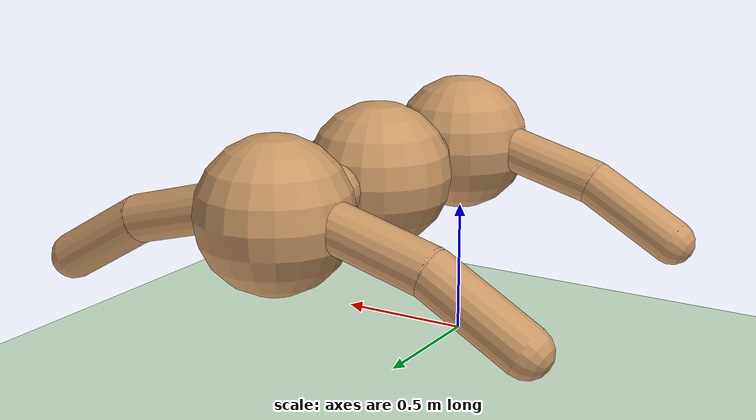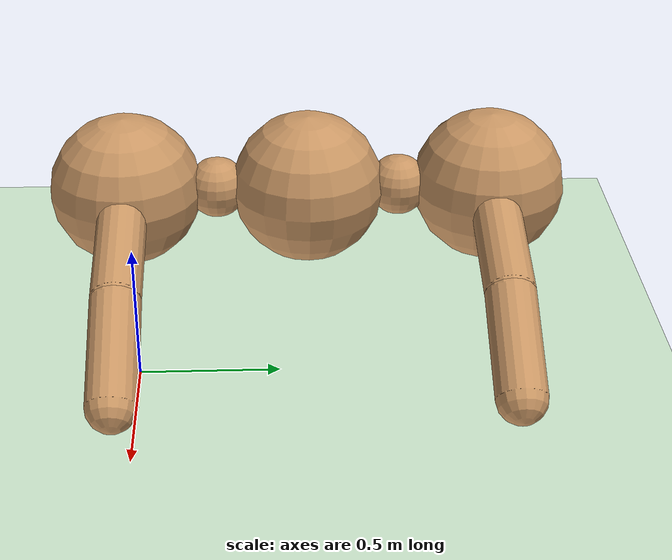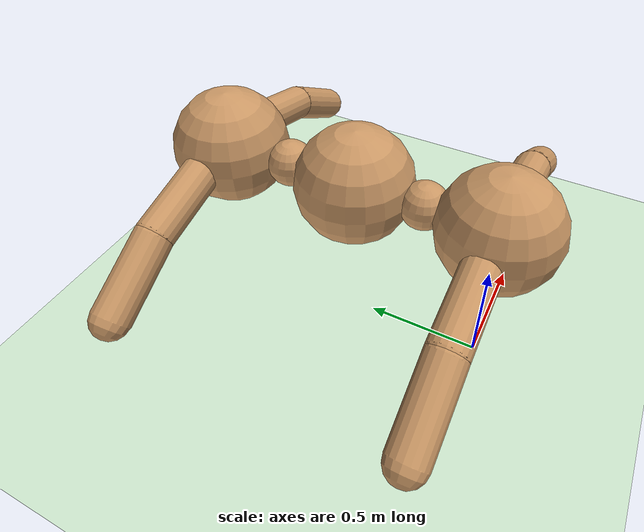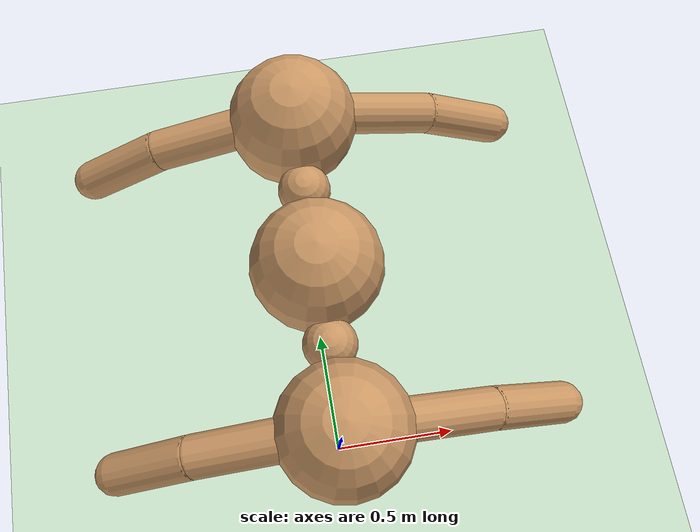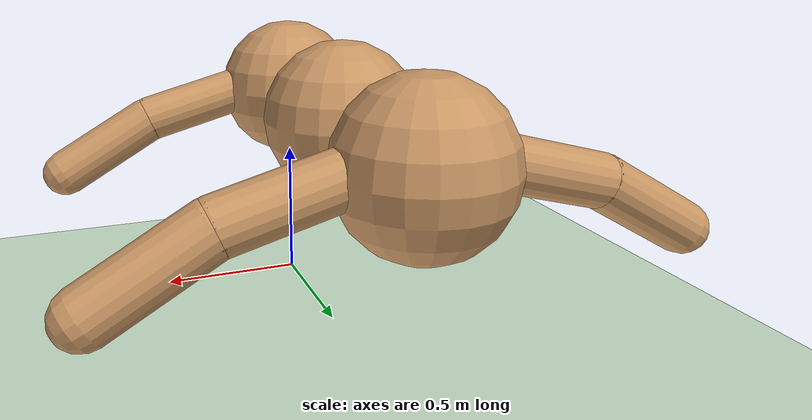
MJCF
<mujoco model="gecko">
  <compiler angle="degree" coordinate="local" inertiafromgeom="true"/>
  <option integrator="RK4" timestep="0.01"/>

  <custom>
    <numeric data="0.0 0.0 0.55 1.0 0.0 0.0 0.0 0.0 1.0 0.0 -1.0 0.0 -1.0 0.0 1.0" name="init_qpos"/>
  </custom>

  <default>
    <joint armature="1" damping="1" limited="true"/>
    <geom conaffinity="0" condim="3" density="5.0" friction="1 0.5 0.5" margin="0.01" rgba="0.8 0.6 0.4 1"/>
  </default>

  <asset>
    <texture builtin="gradient" height="100" rgb1="1 1 1" rgb2="0 0 0" type="skybox" width="100"/>
    <texture builtin="flat" height="1278" mark="cross" markrgb="1 1 1" name="texgeom" random="0.01" rgb1="0.8 0.6 0.4" rgb2="0.8 0.6 0.4" type="cube" width="127"/>
    <texture builtin="checker" height="100" name="texplane" rgb1="0 0 0" rgb2="0.8 0.8 0.8" type="2d" width="100"/>
    <material name="MatPlane" reflectance="0.5" shininess="1" specular="1" texrepeat="60 60" texture="texplane"/>
    <material name="geom" texture="texgeom" texuniform="true"/>
  </asset>

  <worldbody>
    <light cutoff="100" diffuse="1 1 1" dir="-0 0 -1.3" directional="true" exponent="1" pos="0 0 1.3" specular=".1 .1 .1"/>
    <geom conaffinity="1" condim="3" material="MatPlane" name="floor" pos="0.0 0.0 0.0" rgba="0.8 0.9 0.8 1" size="40 40 40" type="plane"/>

    <!-- ====== Gecko ====== -->
    <body name="torso" pos="0.0 0.0 0.75">
      <geom name="head_geom" pos="0.0 0.0 0.0" size="0.25" type="sphere"/>
      <joint armature="0.0" damping="0.0" limited="false" margin="0.01" name="root" pos="0.0 0.0 0.0" type="free"/>

      <body name="front_right_leg" pos="0.0 0.0 0.0">
        <geom fromto="0.0 0.0 0.0 -0.2 0.0 0.0" name="front_right_aux_geom" size="0.08" type="capsule"/>

        <body name="front_right_aux" pos="-0.2 0.0 0.0" axisangle="0 1 0 -15">
          <joint name="hip0" pos="0.0 0.0 0.0" axis="0 0 1" range="-30 30" type="hinge"/>
          <geom fromto="0.0 0.0 0.0 -0.35 0.0 0.0" name="front_right_leg_geom" size="0.08" type="capsule"/>

          <body pos="-0.35 0.0 0.0" axisangle="0 1 0 -15">
            <joint name="ankle0" pos="0.0 0.0 0.0" axis="0 0 1" range="-30 30" type="hinge"/>
            <geom fromto="0.0 0.0 0.0 -0.35 0.0 0.0" name="front_right_ankle_geom" size="0.08" type="capsule"/>
          </body>
        </body>
      </body>

      <body name="front_left_leg" pos="0.0 0.0 0.0">
        <geom fromto="0.0 0.0 0.0 0.2 0.0 0.0" name="front_left_aux_geom" size="0.08" type="capsule"/>

        <body name="front_left_aux" pos="0.2 0.0 0.0" axisangle="0 1 0 15">
          <joint name="hip1" pos="0.0 0.0 0.0" axis="0 0 1" range="-30 30" type="hinge"/>
          <geom fromto="0.0 0.0 0.0 0.35 0.0 0.0" name="front_left_leg_geom" size="0.08" type="capsule"/>

          <body pos="0.35 0.0 0.0" axisangle="0 1 0 15">
            <joint name="ankle1" pos="0.0 0.0 0.0" axis="0 0 1" range="-30 30" type="hinge"/>
            <geom fromto="0.0 0.0 0.0 0.35 0.0 0.0" name="front_left_ankle_geom" size="0.08" type="capsule"/>
          </body>
        </body>
      </body>

      <body name="trunk" pos="0.0 0.6 0.0">
        <geom name="trunk_geom" pos="0.0 0.0 0.0" size="0.25" type="sphere"/>
        <geom name="connector0" pos="0.0 -0.3 0.0" size="0.1" type="sphere"/>
        <joint name="joint0" pos="0.0 -0.3 0.0" axis="0 0 1" range="-45 45" type="hinge"/>

        <body name="back" pos="0.0 0.6 0.0">
          <geom name="back_geom" pos="0.0 0.0 0.0" size="0.25" type="sphere"/>
          <geom name="connector1" pos="0.0 -0.3 0.0" size="0.1" type="sphere"/>
          <joint name="joint1" pos="0.0 -0.3 0.0" axis="0 0 1" range="-45 45" type="hinge"/>

          <body name="back_right_leg" pos="0.0 0.0 0.0">
            <geom fromto="0.0 0.0 0.0 -0.2 0.0 0.0" name="back_right_aux_geom" size="0.08" type="capsule"/>

            <body name="back_right_aux" pos="-0.2 0.0 0.0" axisangle="0 1 0 -15">
              <joint name="hip2" pos="0.0 0.0 0.0" axis="0 0 1" range="-30 30" type="hinge"/>
              <geom fromto="0.0 0.0 0.0 -0.35 0.0 0.0" name="back_right_leg_geom" size="0.08" type="capsule"/>

              <body pos="-0.35 0.0 0.0" axisangle="0 1 0 -15">
                <joint name="ankle2" pos="0.0 0.0 0.0" axis="0 0 1" range="-30 30" type="hinge"/>
                <geom fromto="0.0 0.0 0.0 -0.35 0.0 0.0" name="back_right_ankle_geom" size="0.08" type="capsule"/>
              </body>
            </body>
          </body>

          <body name="back_left_leg" pos="0.0 0.0 0.0">
            <geom fromto="0.0 0.0 0.0 0.2 0.0 0.0" name="back_left_aux_geom" size="0.08" type="capsule"/>

            <body name="back_left_aux" pos="0.2 0.0 0.0" axisangle="0 1 0 15">
              <joint name="hip3" pos="0.0 0.0 0.0" axis="0 0 1" range="-30 30" type="hinge"/>
              <geom fromto="0.0 0.0 0.0 0.35 0.0 0.0" name="back_left_leg_geom" size="0.08" type="capsule"/>

              <body pos="0.35 0.0 0.0" axisangle="0 1 0 15">
                <joint name="ankle3" pos="0.0 0.0 0.0" axis="0 0 1" range="-30 30" type="hinge"/>
                <geom fromto="0.0 0.0 0.0 0.35 0.0 0.0" name="back_left_ankle_geom" size="0.08" type="capsule"/>
              </body>
            </body>
          </body>
        </body>
      </body>
    </body>
  </worldbody>

  <actuator>
    <motor ctrllimited="true" ctrlrange="-1.0 1.0" joint="hip0" gear="150"/>
    <motor ctrllimited="true" ctrlrange="-1.0 1.0" joint="ankle0" gear="150"/>
    <motor ctrllimited="true" ctrlrange="-1.0 1.0" joint="hip1" gear="150"/>
    <motor ctrllimited="true" ctrlrange="-1.0 1.0" joint="ankle1" gear="150"/>
    <motor ctrllimited="true" ctrlrange="-1.0 1.0" joint="hip2" gear="150"/>
    <motor ctrllimited="true" ctrlrange="-1.0 1.0" joint="ankle2" gear="150"/>
    <motor ctrllimited="true" ctrlrange="-1.0 1.0" joint="hip3" gear="150"/>
    <motor ctrllimited="true" ctrlrange="-1.0 1.0" joint="ankle3" gear="150"/>
  </actuator>
</mujoco>
